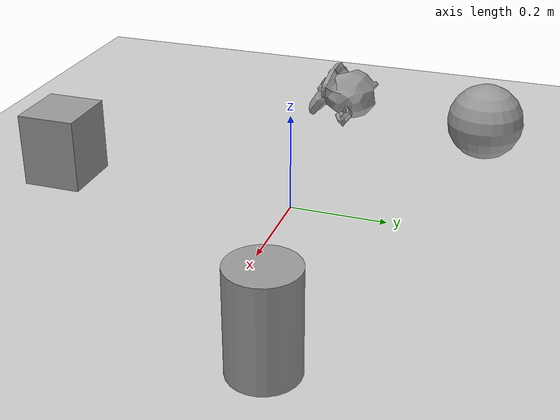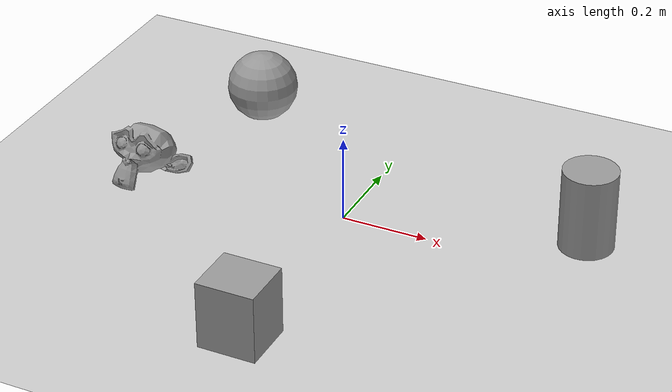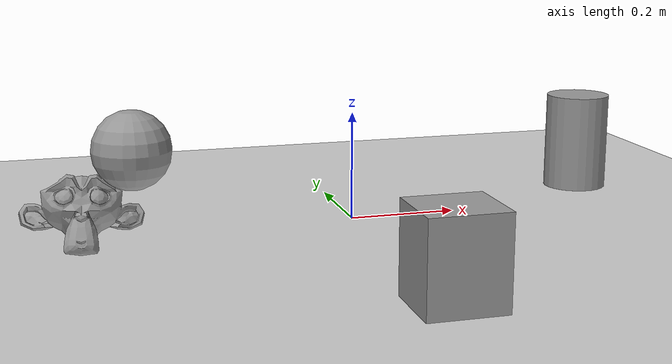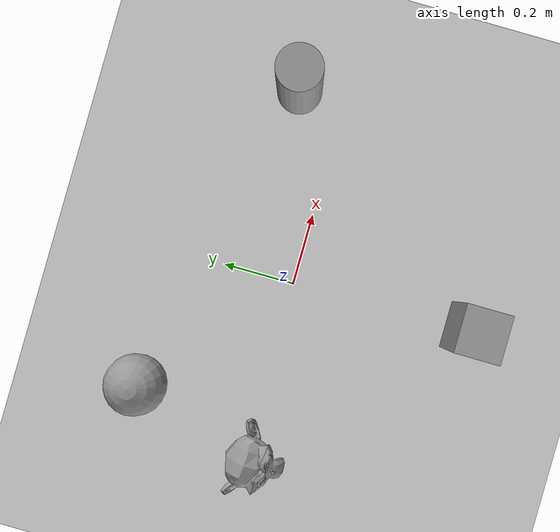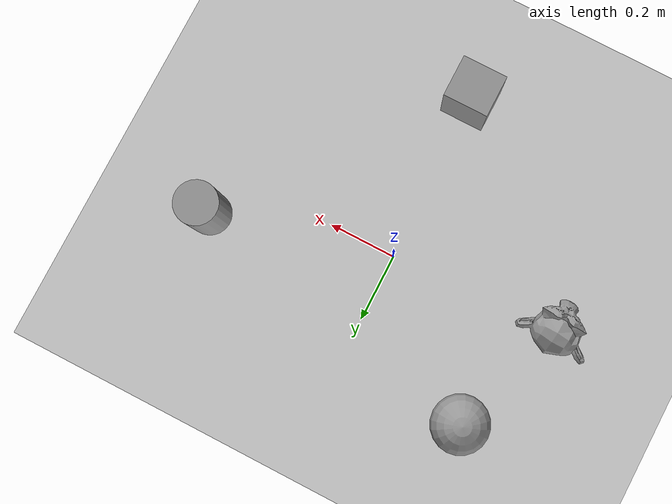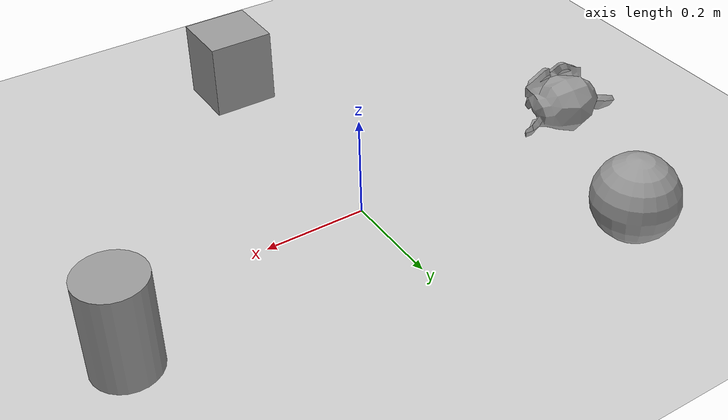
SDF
<sdf version="1.6">
 <world name="default">
  <light name="sun" type="directional">
   <pose>0 0 10 0 -0 0</pose>
   <diffuse>0.8 0.8 0.8 1</diffuse>
   <specular>0.2 0.2 0.2 1</specular>
   <attenuation>
    <range>1000</range>
    <constant>0.9</constant>
    <linear>0.01</linear>
    <quadratic>0.001</quadratic>
   </attenuation>
   <direction>-0.5 0.1 -0.9</direction>
  </light>
  <model name="ground_plane">
   <static>1</static>
   <link name="link">
    <collision name="collision">
     <geometry><plane><normal>0 0 1</normal><size>100 100</size></plane></geometry>
     <surface>
      <contact><collide_bitmask>65535</collide_bitmask></contact>
      <friction><ode><mu>100</mu><mu2>50</mu2></ode></friction>
     </surface>
    </collision>
    <visual name="visual">
     <cast_shadows>0</cast_shadows>
     <geometry><plane><normal>0 0 1</normal><size>100 100</size></plane></geometry>
     <material>
      <script><uri>file://media/materials/scripts/gazebo.material</uri><name>Gazebo/Grey</name></script>
     </material>
    </visual>
   </link>
  </model>
  <gravity>0 0 -9.8</gravity>
  <magnetic_field>6e-06 2.3e-05 -4.2e-05</magnetic_field>
  <atmosphere type="adiabatic"/>
  <physics name="default_physics" default="0" type="ode">
   <max_step_size>0.001</max_step_size>
   <real_time_factor>1</real_time_factor>
   <real_time_update_rate>1000</real_time_update_rate>
   <max_constants>100</max_constants>
  </physics>
  <scene><ambient>0.4 0.4 0.4 1</ambient><background>0.7 0.7 0.7 1</background><shadows>1</shadows></scene>
  <audio><device>default</device></audio>
  <spherical_coordinates>
   <surface_model>EARTH_WGS84</surface_model>
   <latitude_deg>0</latitude_deg>
   <longitude_deg>0</longitude_deg>
   <elevation>0</elevation>
   <heading_deg>0</heading_deg>
  </spherical_coordinates>
  <model name="unit_sphere_soft">
   <link name="link">
    <inertial>
     <mass>0.002</mass>
     <inertia>
      <ixx>5.55e-06</ixx>
      <ixy>0</ixy>
      <ixz>0</ixz>
      <iyy>5.55e-06</iyy>
      <iyz>0</iyz>
      <izz>5.55e-06</izz>
     </inertia>
    </inertial>
    <visual name="visual">
     <geometry><sphere><radius>0.0832608</radius></sphere></geometry>
     <material>
      <script><name>Gazebo/Grey</name><uri>file://media/materials/scripts/gazebo.material</uri></script>
      <shader type="vertex"><normal_map>__default__</normal_map></shader>
      <ambient>0.3 0.3 0.3 1</ambient>
      <diffuse>0.7 0.7 0.7 1</diffuse>
      <specular>0.01 0.01 0.01 1</specular>
      <emissive>0 0 0 1</emissive>
     </material>
    </visual>
    <collision name="collision">
     <geometry><sphere><radius>0.083261</radius></sphere></geometry>
     <surface>
      <friction>
       <ode><mu>2000</mu><mu2>2000</mu2><fdir1>0 0 0</fdir1><slip1>0</slip1><slip2>0</slip2></ode>
       <torsional>
        <coefficient>1</coefficient>
        <patch_radius>0</patch_radius>
        <surface_radius>0</surface_radius>
        <use_patch_radius>0</use_patch_radius>
        <ode><slip>0</slip></ode>
       </torsional>
      </friction>
      <bounce><restitution_coefficient>0</restitution_coefficient><threshold>1e+06</threshold></bounce>
      <contact>
       <collide_without_contact>0</collide_without_contact>
       <collide_without_contact_bitmask>1</collide_without_contact_bitmask>
       <collide_bitmask>1</collide_bitmask>
       <ode>
        <soft_cfm>2</soft_cfm>
        <soft_erp>2.2</soft_erp>
        <kp>1e+13</kp>
        <kd>1</kd>
        <max_vel>0.01</max_vel>
        <min_depth>0</min_depth>
       </ode>
       <bullet>
        <split_impulse>1</split_impulse>
        <split_impulse_penetration_threshold>-0.01</split_impulse_penetration_threshold>
        <soft_cfm>2</soft_cfm>
        <soft_erp>2.2</soft_erp>
        <kp>1e+13</kp>
        <kd>1</kd>
       </bullet>
      </contact>
     </surface>
    </collision>
   </link>
   <static>0</static>
   <pose>-0.37253 0.329519 0.083261 0 -0 0</pose>
  </model>
  <model name="unit_box_soft">
   <link name="link">
    <inertial>
     <mass>0.02</mass>
     <inertia>
      <ixx>6.545e-05</ixx>
      <ixy>0</ixy>
      <ixz>0</ixz>
      <iyy>6.894e-05</iyy>
      <iyz>0</iyz>
      <izz>5.449e-05</izz>
     </inertia>
    </inertial>
    <visual name="visual">
     <geometry><box><size>0.131884 0.123693 0.154823</size></box></geometry>
     <material>
      <script><name>Gazebo/Grey</name><uri>file://media/materials/scripts/gazebo.material</uri></script>
      <shader type="vertex"><normal_map>__default__</normal_map></shader>
     </material>
    </visual>
    <collision name="collision">
     <geometry><box><size>0.131884 0.123693 0.154823</size></box></geometry>
     <surface>
      <friction>
       <ode><mu>2000</mu><mu2>2000</mu2><fdir1>0 0 0</fdir1><slip1>0</slip1><slip2>0</slip2></ode>
       <torsional>
        <coefficient>1</coefficient>
        <patch_radius>0</patch_radius>
        <surface_radius>0</surface_radius>
        <use_patch_radius>0</use_patch_radius>
        <ode><slip>0</slip></ode>
       </torsional>
      </friction>
      <bounce><restitution_coefficient>0</restitution_coefficient><threshold>1e+06</threshold></bounce>
      <contact>
       <collide_without_contact>0</collide_without_contact>
       <collide_without_contact_bitmask>1</collide_without_contact_bitmask>
       <collide_bitmask>1</collide_bitmask>
       <ode>
        <soft_cfm>2</soft_cfm>
        <soft_erp>2</soft_erp>
        <kp>1e+13</kp>
        <kd>1</kd>
        <max_vel>0.01</max_vel>
        <min_depth>0</min_depth>
       </ode>
       <bullet>
        <split_impulse>1</split_impulse>
        <split_impulse_penetration_threshold>-0.01</split_impulse_penetration_threshold>
        <soft_cfm>2</soft_cfm>
        <soft_erp>2</soft_erp>
        <kp>1e+13</kp>
        <kd>1</kd>
       </bullet>
      </contact>
     </surface>
    </collision>
   </link>
   <static>0</static>
   <pose>0.009898 -0.50344 0.077407 -2.6e-05 5e-05 -1.1e-05</pose>
  </model>
  <model name="monkey_soft">
   <link name="link_0">
    <inertial>
     <mass>0.2</mass>
     <inertia>
      <ixx>0.00166667</ixx>
      <ixy>0</ixy>
      <ixz>0</ixz>
      <iyy>0.00166667</iyy>
      <iyz>0</iyz>
      <izz>0.00166667</izz>
     </inertia>
    </inertial>
    <visual name="visual">
     <geometry>
      <mesh>
       <uri>/home/ben/catkin_ws/src/version1_description/meshes/monkey.dae</uri>
       <scale>0.08 0.08 0.08</scale>
      </mesh>
     </geometry>
     <material>
      <lighting>1</lighting>
      <script><uri>file://media/materials/scripts/gazebo.material</uri><name>Gazebo/Grey</name></script>
      <shader type="vertex"><normal_map>__default__</normal_map></shader>
      <ambient>0.3 0.3 0.3 1</ambient>
      <diffuse>0.7 0.7 0.7 1</diffuse>
      <specular>0.01 0.01 0.01 1</specular>
      <emissive>0 0 0 1</emissive>
     </material>
    </visual>
    <collision name="collision">
     <geometry>
      <mesh>
       <uri>/home/ben/catkin_ws/src/version1_description/meshes/monkey.dae</uri>
       <scale>0.08 0.08 0.08</scale>
      </mesh>
     </geometry>
     <surface>
      <friction>
       <ode><mu>2000</mu><mu2>2000</mu2><fdir1>0 0 0</fdir1><slip1>0</slip1><slip2>0</slip2></ode>
       <torsional>
        <coefficient>1</coefficient>
        <patch_radius>0</patch_radius>
        <surface_radius>0</surface_radius>
        <use_patch_radius>0</use_patch_radius>
        <ode><slip>0</slip></ode>
       </torsional>
      </friction>
      <bounce><restitution_coefficient>0</restitution_coefficient><threshold>1e+06</threshold></bounce>
      <contact>
       <collide_without_contact>0</collide_without_contact>
       <collide_without_contact_bitmask>1</collide_without_contact_bitmask>
       <collide_bitmask>1</collide_bitmask>
       <ode>
        <soft_cfm>2</soft_cfm>
        <soft_erp>2</soft_erp>
        <kp>1e+13</kp>
        <kd>1</kd>
        <max_vel>0.01</max_vel>
        <min_depth>0</min_depth>
       </ode>
       <bullet>
        <split_impulse>1</split_impulse>
        <split_impulse_penetration_threshold>-0.01</split_impulse_penetration_threshold>
        <soft_cfm>2</soft_cfm>
        <soft_erp>2</soft_erp>
        <kp>1e+13</kp>
        <kd>1</kd>
       </bullet>
      </contact>
     </surface>
    </collision>
   </link>
   <static>0</static>
   <pose>-0.497658 -0.029556 0.043323 -0.603765 0.048621 -0.07676</pose>
  </model>
  <model name="unit_cylinder_soft">
   <link name="link_0">
    <inertial>
     <mass>2.9756</mass>
     <inertia>
      <ixx>0.0118533</ixx>
      <ixy>0</ixy>
      <ixz>0</ixz>
      <iyy>0.0118533</iyy>
      <iyz>0</iyz>
      <izz>0.00579759</izz>
     </inertia>
    </inertial>
    <pose>-0.018341 -0.000306 -0.030761 0 -0 0.000354</pose>
    <visual name="visual">
     <geometry><cylinder><radius>0.0624239</radius><length>0.190031</length></cylinder></geometry>
     <material>
      <lighting>1</lighting>
      <script><uri>file://media/materials/scripts/gazebo.material</uri><name>Gazebo/Grey</name></script>
      <shader type="vertex"><normal_map>__default__</normal_map></shader>
      <ambient>0.3 0.3 0.3 1</ambient>
      <diffuse>0.7 0.7 0.7 1</diffuse>
      <specular>0.01 0.01 0.01 1</specular>
      <emissive>0 0 0 1</emissive>
     </material>
    </visual>
    <collision name="collision">
     <geometry><cylinder><radius>0.062424</radius><length>0.190031</length></cylinder></geometry>
     <surface>
      <friction>
       <ode><mu>2000</mu><mu2>2000</mu2><fdir1>0 0 0</fdir1><slip1>0</slip1><slip2>0</slip2></ode>
       <torsional>
        <coefficient>1</coefficient>
        <patch_radius>0</patch_radius>
        <surface_radius>0</surface_radius>
        <use_patch_radius>1</use_patch_radius>
        <ode><slip>0</slip></ode>
       </torsional>
      </friction>
      <bounce><restitution_coefficient>0</restitution_coefficient><threshold>1e+06</threshold></bounce>
      <contact>
       <collide_without_contact>0</collide_without_contact>
       <collide_without_contact_bitmask>1</collide_without_contact_bitmask>
       <collide_bitmask>1</collide_bitmask>
       <ode>
        <soft_cfm>2</soft_cfm>
        <soft_erp>2</soft_erp>
        <kp>1e+13</kp>
        <kd>1</kd>
        <max_vel>0.01</max_vel>
        <min_depth>0</min_depth>
       </ode>
       <bullet>
        <split_impulse>1</split_impulse>
        <split_impulse_penetration_threshold>-0.01</split_impulse_penetration_threshold>
        <soft_cfm>2</soft_cfm>
        <soft_erp>2</soft_erp>
        <kp>1e+13</kp>
        <kd>1</kd>
       </bullet>
      </contact>
     </surface>
    </collision>
   </link>
   <static>0</static>
   <plugin name="applied_force_fetcher" filename="libapplied_force_fetcher_plugin.so">
    <LinkName>link_0</LinkName>
   </plugin>
   <pose>0.532706 0.145371 0.125776 0 -0 0.95281</pose>
  </model>
 </world>
</sdf>
